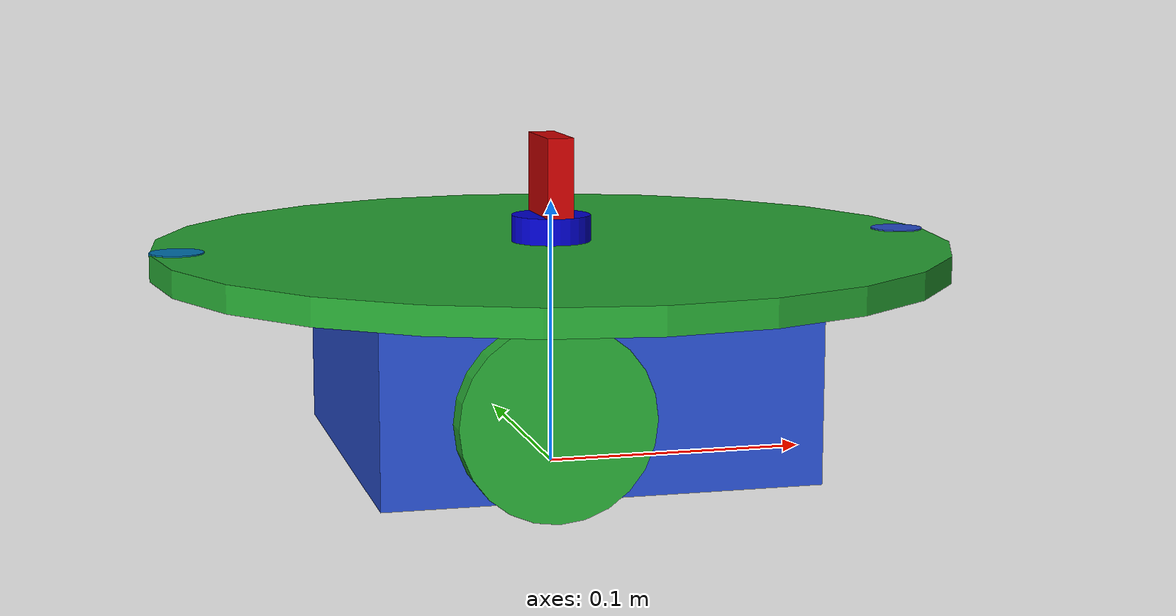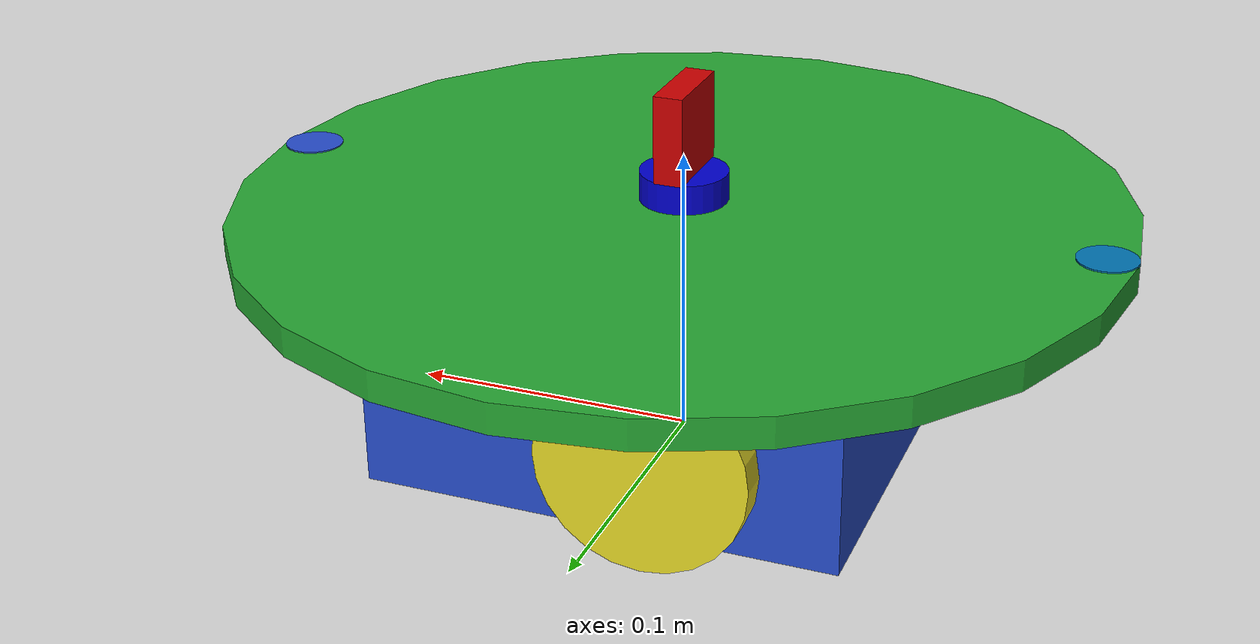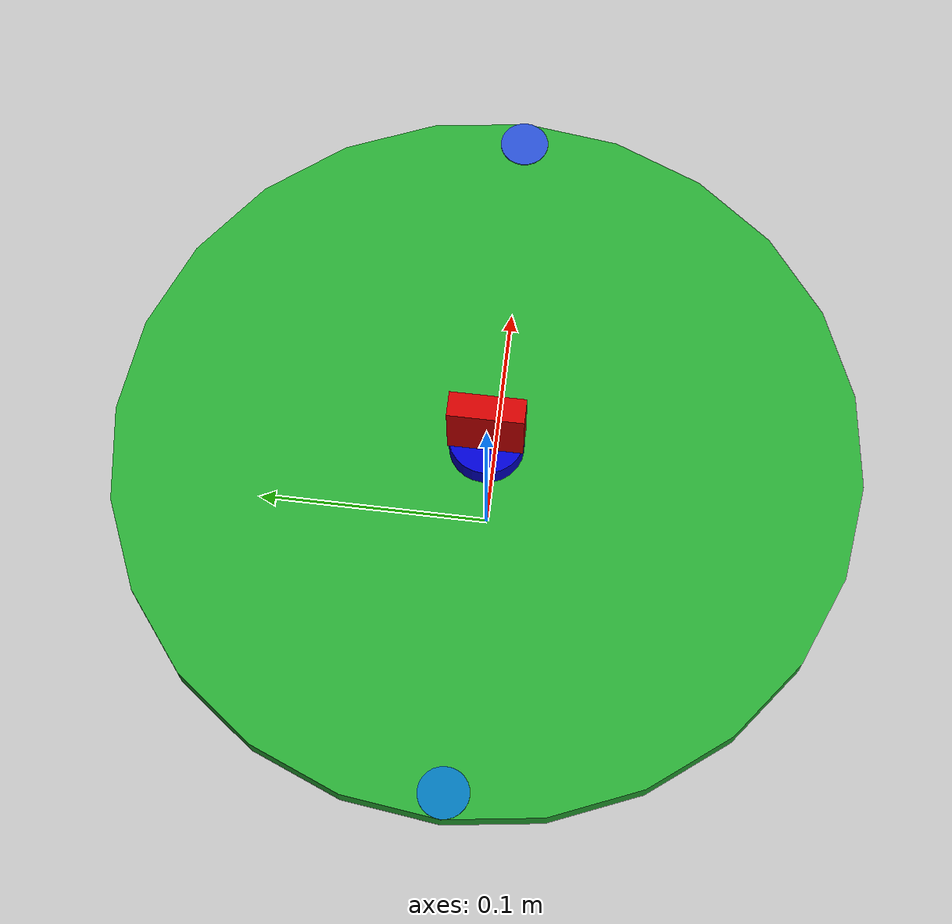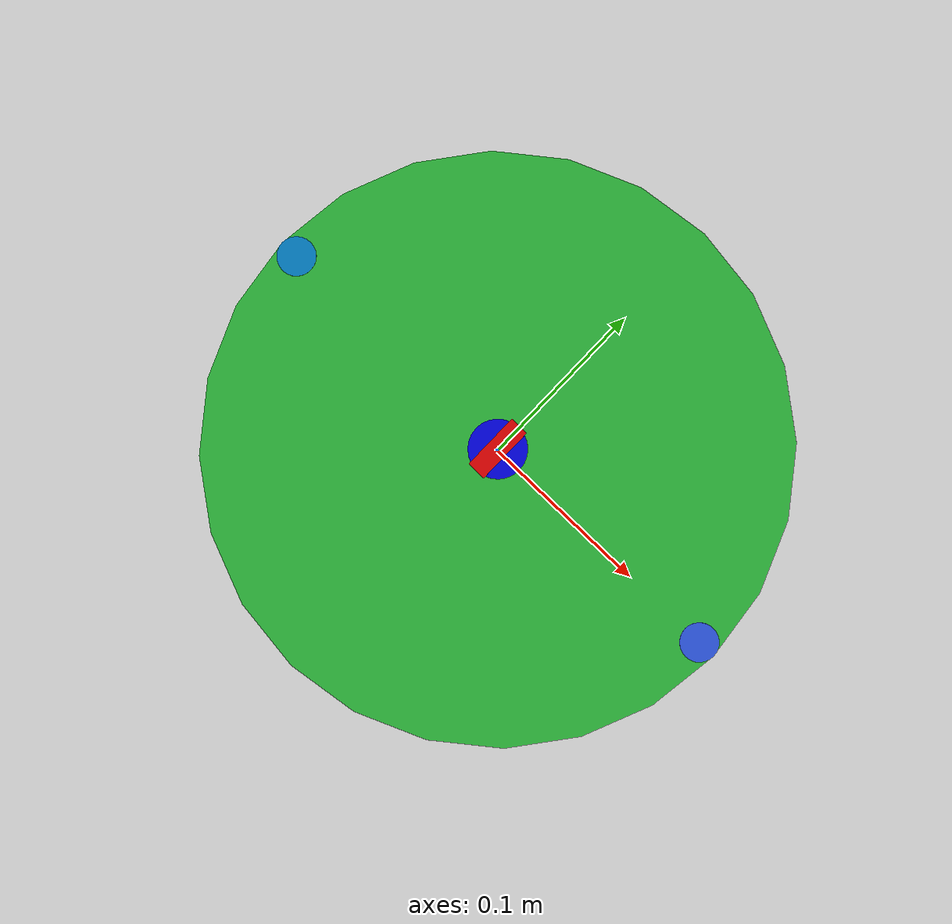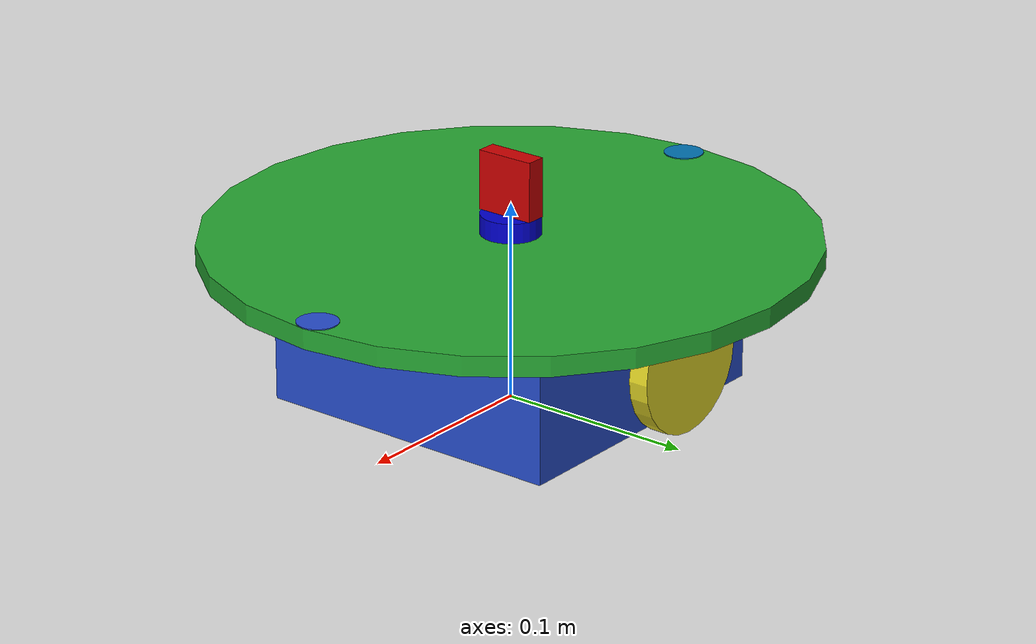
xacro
<?xml version="1.0"?>
<robot name="mv_robot1" xmlns:xacro="http://ros.org/wiki/xacro">

  <xacro:property name="base_width" value="0.16"/>
  <xacro:property name="base_len" value="0.16"/>
  <xacro:property name="base_thick" value="0.07"/>
  <xacro:property name="cover_rad" value="0.15"/>
  <xacro:property name="cover_thick" value="0.01"/>
  <xacro:property name="north_rad" value="0.01"/>

  <xacro:property name="wheel_radius" value="0.035"/>
  <xacro:property name="base_wheel_gap" value="0.007"/>
  <xacro:property name="wheel_separation" value="0.174"/> <!-- not used -->
  <xacro:property name="wheel_joint_offset" value="0.02"/>

  <xacro:property name="caster_wheel_radius" value="${wheel_radius/2}"/>
  <xacro:property name="caster_wheel_mass" value="0.001"/>
  <xacro:property name="caster_wheel_joint_offset" value="0.052"/>

  <!--Gazebo Color Properties-->
  <gazebo reference="base_link">
    <material>Gazebo/Blue</material>
  </gazebo>

  <gazebo reference="top_cover">
    <material>Gazebo/Green</material>
  </gazebo>

  <gazebo reference="left_wheel">
    <material>Gazebo/Yellow</material>
  </gazebo>

  <gazebo reference="right_wheel">
    <material>Gazebo/Green</material>
  </gazebo>

  <gazebo reference="sensor_laser">
    <material>Gazebo/Gray</material>
  </gazebo>

  <gazebo reference="north">
    <material>Gazebo/Blue</material>
  </gazebo>

  <gazebo reference="caster_wheel">
    <material>Gazebo/Blue</material>
    <mu1>0.0</mu1>
    <mu2>0.0</mu2>
    <slip1>1.0</slip1>
    <slip2>1.0</slip2>
    <selfCollide>true</selfCollide>
    <gravity>true</gravity>
  </gazebo>

  <material name="blue">
    <color rgba="0 0 0.8 1"/>
  </material>
  <material name="black">
    <color rgba="0 0 0 1"/>
  </material>
  <material name="white">
    <color rgba="1 1 1 1"/>
  </material>
  <material name="red">
    <color rgba="0.8 0.0 0.0 1.0"/>
  </material>
  <material name="mycolor">
    <color rgba="0.1 0.2 0.2 1.0"/>
  </material>

  <!--Interial macros-->
  <xacro:macro name="cylinder_inertia" params="m r h">
    <inertial>
      <mass value="${m}"/>
      <inertia ixx="${m*(3*r*r+h*h)/12}" ixy = "0" ixz = "0" iyy="${m*(3*r*r+h*h)/12}" iyz = "0" izz="${m*r*r/2}"/>
    </inertial>
  </xacro:macro>

  <xacro:macro name="box_inertia" params="m w h d">
    <inertial>
      <mass value="${m}"/>
      <inertia ixx="${m / 12.0 * (d*d + h*h)}" ixy="0.0" ixz="0.0" iyy="${m / 12.0 * (w*w + h*h)}" iyz="0.0" izz="${m / 12.0 * (w*w + d*d)}"/>
    </inertial>
  </xacro:macro>

  <xacro:macro name="sphere_inertia" params="m r">
    <inertial>
      <mass value="${m}"/>
      <inertia ixx="${2.0*m*(r*r)/5.0}" ixy="0.0" ixz="0.0" iyy="${2.0*m*(r*r)/5.0}" iyz="0.0" izz="${2.0*m*(r*r)/5.0}"/>
    </inertial>
  </xacro:macro>

  <!--Base Footprint-->
  <link name="base_footprint">
    <visual>
        <origin xyz="0 0 0" rpy="0 0 0" />
        <geometry>
            <box size="0.001 0.001 0.001" />
        </geometry>
    </visual>
  </link>

  <!--Base link-->
  <link name="base_link">
    <xacro:box_inertia m="1" w="${base_len}" h="${base_width}" d="0.01"/>
    <visual>
      <geometry>
        <box size="${base_len} ${base_width} ${base_thick}"/>
      </geometry>
    </visual>
    <collision>
      <geometry>
        <box size="${base_len} ${base_width} ${base_thick}"/>
      </geometry>
    </collision>
  </link>
  <link name="top_cover">
    <xacro:cylinder_inertia m="1" r="${cover_rad}" h="${cover_thick}"/>
    <visual>
     <origin xyz="0 0 0" rpy="0 0 0"/>
     <geometry>
        <cylinder radius="${cover_rad}" length="${cover_thick}" />
      </geometry>
    </visual>
    <collision name="cover_collision">
      <origin xyz="0 0 0" rpy="0 0 0"/>
      <geometry>
        <cylinder radius="${cover_rad}" length="${cover_thick}" />
      </geometry>
    </collision>
    <sensor name="my_contact" type="contact">
      <contact>
         <collision>cover_collision</collision>
       </contact>
     </sensor>

  </link>

  <link name="north">
    <visual>
     <origin xyz="0 0 0" rpy="0 0 0"/>
     <geometry>
        <cylinder radius="${north_rad}" length="0.001" />
      </geometry>
    </visual>
    <collision name="north_collision">
      <origin xyz="0 0 0" rpy="0 0 0"/>
      <geometry>
        <cylinder radius="0.01" length="0.001" />
      </geometry>
    </collision>
  </link>
  <joint name="north_cover_joint" type="fixed">
    <axis xyz="0 1 0" rpy="0 0 0" />
    <parent link="top_cover"/>
    <child link="north"/>
    <origin xyz=" ${cover_rad - north_rad} 0 ${cover_thick / 2}" rpy="0 0 0"/>
  </joint>

  <link name="south">
    <visual>
     <origin xyz="0 0 0" rpy="0 0 0"/>
     <geometry>
        <cylinder radius="${north_rad}" length="0.001" />
      </geometry>
    </visual>
    <collision name="north_collision">
      <origin xyz="0 0 0" rpy="0 0 0"/>
      <geometry>
        <cylinder radius="0.01" length="0.001" />
      </geometry>
    </collision>
  </link>
  <joint name="south_cover_joint" type="fixed">
    <axis xyz="0 1 0" rpy="0 0 0" />
    <parent link="top_cover"/>
    <child link="south"/>
    <origin xyz=" ${-cover_rad + north_rad} 0 ${cover_thick / 2}" rpy="0 0 0"/>
  </joint>

  <joint name="cover_base_joint" type="fixed">
    <axis xyz="0 0 1" rpy="0 0 0" />
    <parent link="base_link"/>
    <child link="top_cover"/>
    <origin xyz=" 0 0 ${(base_thick + cover_thick) / 2}" rpy="0 0 0"/>
  </joint>

  <!--base_link to base_footprint Joint-->
  <joint name="base_link_joint" type="fixed">
    <origin xyz="0 0 ${wheel_radius + 0.005}" rpy="0 0 0" />
    <parent link="base_footprint"/>
    <child link="base_link" />
  </joint>

  <xacro:include filename="$(find fl_robot_py)/urdf/fl_robot_wheel.xacro" />

  <!--Create Left & Right Wheel links/joints-->
  <xacro:wheel prefix="left" radius="${wheel_radius}" reflect="1"/>
  <xacro:wheel prefix="right" radius="${wheel_radius}" reflect="-1"/>

  <!--Caster Wheel Link -->
  <link name="caster_wheel">
    <visual>
      <origin xyz="0 0 0" rpy="0 0 0"/>
      <geometry>
        <sphere radius="${caster_wheel_radius}"/>
      </geometry>
      <material name="blue"/>
    </visual>
    <collision>
      <origin xyz="0 0 0" rpy="0 0 0"/>
      <geometry>
        <sphere radius="${caster_wheel_radius}"/>
      </geometry>
    </collision>
    <xacro:sphere_inertia m="1" r="${caster_wheel_radius}"/>
  </link>

  <!-- Caster Wheel Joint -->
  <joint name="caster_wheel_joint" type="continuous">
    <axis xyz="0 1 0" rpy="0 0 0" />
    <parent link="base_link"/>
    <child link="caster_wheel"/>
    <origin xyz="${caster_wheel_joint_offset} 0 -${caster_wheel_radius+0.005}" rpy="0 0 0"/>
    <limit upper="3.1415" lower="-3.1415" effort="30" velocity="5.0"/>
  </joint>

  <!-- laser  -->
  <xacro:property name="laser_size_x" value="0.03"/>
  <xacro:property name="laser_size_y" value="0.03"/>
  <xacro:property name="laser_size_z" value="0.01"/>
  <xacro:property name="laser_origin_x" value="0"/>
  <xacro:property name="laser_origin_y" value="0"/>
  <xacro:property name="laser_origin_z" value="${(cover_thick + laser_size_z)/ 2}"/>

  <link name="sensor_laser">
    <visual>
      <geometry>
        <cylinder radius="${laser_size_x / 2}" length="${laser_size_z}" />
      </geometry>
      <material name="blue"/>
    </visual>
   <collision>
      <geometry>
        <cylinder radius="${laser_size_x / 2}" length="${laser_size_z}" />
        </geometry>
    </collision>
    <xacro:box_inertia m="0.2" w="${laser_size_x}" h="${laser_size_y}" d="${laser_size_z}"/>
  </link>

  <joint name="sensor_laser_joint" type="fixed">
    <origin xyz="${laser_origin_x} ${laser_origin_y} ${laser_origin_z}" rpy="0 0 0" />
    <parent link="top_cover"/>
    <child link="sensor_laser" />
  </joint>

  <xacro:include filename="$(find fl_robot_py)/urdf/fl_robot01_laser_plugins.xacro"/>
  <xacro:include filename="$(find fl_robot_py)/urdf/camera20230203.xacro" />
  <!-- camera -->
  <xacro:front_camera name = "camera" />

</robot>

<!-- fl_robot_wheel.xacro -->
<robot xmlns:xacro="http://www.ros.org/wiki/xacro" name="sumo">
  <xacro:macro name="wheel" params="prefix radius reflect">
    <link name="${prefix}_wheel">
      <visual>
        <geometry>
          <cylinder length="0.01" radius="${radius}"/>
        </geometry>
      </visual>
      <collision>
        <geometry>
          <cylinder length="0.01" radius="${radius}"/>
        </geometry>
        <surface>
          <friction>
            <ode>
              <mu>200.0</mu>
              <mu2>100.0</mu2>
            </ode>
          </friction>
        </surface>
      </collision>
      <inertial>
        <mass value="1"/>
        <inertia ixx="0.06" ixy="0.0" ixz="0.0" iyy="0.06" iyz="0.0" izz="0.25"/>
      </inertial>
    </link>

    <joint name="base_to_${prefix}_wheel" type="continuous">
      <axis xyz="0 0 1" rpy="0 0 0"/>
      <parent link="base_link"/>
      <child link="${prefix}_wheel"/>
      <origin rpy="1.57075 0 0" xyz="${-wheel_joint_offset} ${((base_width/2)+base_wheel_gap)*reflect} -0.005"/>
    </joint>

    <transmission name="${prefix}_wheel_transmission">
      <type>transmission_interface/SimpleTransmission</type>
      <actuator name="$${prefix}_motor">
        <mechanicalReduction>0</mechanicalReduction>
      </actuator>
      <joint name="base_to_${prefix}_wheel">
        <hardwareInterface>hardware_interface/VelocityJointInterface</hardwareInterface>
      </joint>
    </transmission>
  </xacro:macro>
</robot>

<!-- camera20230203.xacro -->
<robot xmlns:xacro="http://www.ros.org/wiki/xacro" >
  <xacro:macro name="front_camera" params="name">

    <joint name="camera_joint" type="fixed">
        <parent link="sensor_laser"/>
        <child link="camera_link"/>
        <origin xyz="0.0 0 0.020" rpy="0 0 0"/>
    </joint>

    <link name="camera_link">
        <visual>
            <geometry>
                <box size="0.010 0.03 0.03"/>
            </geometry>
            <material name="red"/>
        </visual>
    </link>

    <joint name="camera_optical_joint" type="fixed">
        <axis xyz="0 0 1"/>
        <parent link="camera_link"/>
        <child link="camera_link_optical"/>
        <origin xyz="0.005 0 0" rpy="${-pi/2} 0 ${-pi/2}"/>
    </joint>

    <link name="camera_link_optical"></link>

    <gazebo reference="camera_link">
        <material>Gazebo/Red</material>

        <sensor name="camera" type="camera">
            <pose> 0 0 0 0 0 0 </pose>
            <visualize>true</visualize>
            <update_rate>10</update_rate>
            <camera>
                <horizontal_fov>1.089</horizontal_fov>
                <image>
                    <format>R8G8B8</format>
                    <width>640</width>
                    <height>480</height>
                </image>
                <clip>
                    <near>0.1</near>
                    <far>15.0</far>
                </clip>
            </camera>
            <plugin name="camera_controller" filename="libgazebo_ros_camera.so">
                <frame_name>camera_link_optical</frame_name>
            </plugin>
        </sensor>
    </gazebo>
  </xacro:macro>
</robot>
